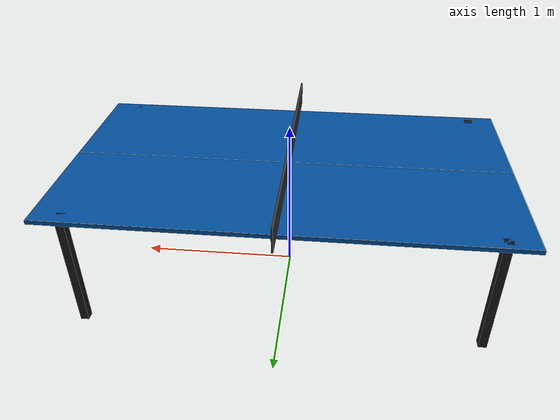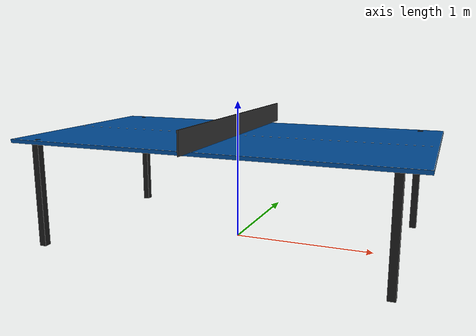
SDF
<?xml version="1.0"?>
<sdf version="1.7">
  <model name="table_tennis_table">
    <static>true</static>

    <!-- Table top -->
    <link name="table_top">
      <pose>0 0 0.7475 0 0 0</pose>

      <collision name="collision">
        <geometry>
          <box>
            <size>2.74 1.525 0.025</size>
          </box>
        </geometry>
        <surface>
          <friction>
            <ode>
              <mu>0.35</mu>
              <mu2>0.35</mu2>
            </ode>
          </friction>
          <bounce>
            <restitution_coefficient>0.75</restitution_coefficient>
            <threshold>0.01</threshold>
          </bounce>
          <contact>
            <ode>
              <kp>1000000.0</kp>
              <kd>100.0</kd>
            </ode>
          </contact>
        </surface>
      </collision>

      <visual name="visual">
        <geometry>
          <box>
            <size>2.74 1.525 0.025</size>
          </box>
        </geometry>
        <material>
          <ambient>0.0 0.3 0.6 1.0</ambient>
          <diffuse>0.0 0.3 0.6 1.0</diffuse>
          <specular>0.2 0.2 0.2 1.0</specular>
        </material>
      </visual>
    </link>

    <!-- White center line -->
    <link name="center_line">
      <pose>0 0 0.76001 0 0 0</pose>
      <visual name="visual">
        <geometry>
          <box>
            <size>2.74 0.003 0.001</size>
          </box>
        </geometry>
        <material>
          <ambient>0.95 0.95 0.95 1.0</ambient>
          <diffuse>0.95 0.95 0.95 1.0</diffuse>
        </material>
      </visual>
    </link>

    <!-- White side lines -->
    <link name="side_line_left">
      <pose>0 0.761 0.76001 0 0 0</pose>
      <visual name="visual">
        <geometry>
          <box>
            <size>2.74 0.003 0.001</size>
          </box>
        </geometry>
        <material>
          <ambient>0.95 0.95 0.95 1.0</ambient>
          <diffuse>0.95 0.95 0.95 1.0</diffuse>
        </material>
      </visual>
    </link>

    <link name="side_line_right">
      <pose>0 -0.761 0.76001 0 0 0</pose>
      <visual name="visual">
        <geometry>
          <box>
            <size>2.74 0.003 0.001</size>
          </box>
        </geometry>
        <material>
          <ambient>0.95 0.95 0.95 1.0</ambient>
          <diffuse>0.95 0.95 0.95 1.0</diffuse>
        </material>
      </visual>
    </link>

    <!-- White end lines -->
    <link name="end_line_left">
      <pose>-1.369 0 0.76001 0 0 0</pose>
      <visual name="visual">
        <geometry>
          <box>
            <size>0.003 1.525 0.001</size>
          </box>
        </geometry>
        <material>
          <ambient>0.95 0.95 0.95 1.0</ambient>
          <diffuse>0.95 0.95 0.95 1.0</diffuse>
        </material>
      </visual>
    </link>

    <link name="end_line_right">
      <pose>1.369 0 0.76001 0 0 0</pose>
      <visual name="visual">
        <geometry>
          <box>
            <size>0.003 1.525 0.001</size>
          </box>
        </geometry>
        <material>
          <ambient>0.95 0.95 0.95 1.0</ambient>
          <diffuse>0.95 0.95 0.95 1.0</diffuse>
        </material>
      </visual>
    </link>

    <!-- Net -->
    <link name="net">
      <pose>0 0 0.83625 0 0 0</pose>

      <collision name="collision">
        <geometry>
          <box>
            <size>0.01 1.83 0.1525</size>
          </box>
        </geometry>
        <surface>
          <friction>
            <ode>
              <mu>0.4</mu>
              <mu2>0.4</mu2>
            </ode>
          </friction>
          <bounce>
            <restitution_coefficient>0.3</restitution_coefficient>
            <threshold>0.01</threshold>
          </bounce>
        </surface>
      </collision>

      <visual name="visual">
        <geometry>
          <box>
            <size>0.01 1.83 0.1525</size>
          </box>
        </geometry>
        <material>
          <ambient>0.2 0.2 0.2 1.0</ambient>
          <diffuse>0.2 0.2 0.2 1.0</diffuse>
          <specular>0.1 0.1 0.1 1.0</specular>
        </material>
      </visual>
    </link>

    <!-- Leg 1 (front left) -->
    <link name="leg1">
      <pose>-1.2 0.7 0.38 0 0 0</pose>
      <collision name="collision">
        <geometry>
          <box>
            <size>0.05 0.05 0.76</size>
          </box>
        </geometry>
      </collision>
      <visual name="visual">
        <geometry>
          <box>
            <size>0.05 0.05 0.76</size>
          </box>
        </geometry>
        <material>
          <ambient>0.1 0.1 0.1 1.0</ambient>
          <diffuse>0.1 0.1 0.1 1.0</diffuse>
        </material>
      </visual>
    </link>

    <!-- Leg 2 (front right) -->
    <link name="leg2">
      <pose>-1.2 -0.7 0.38 0 0 0</pose>
      <collision name="collision">
        <geometry>
          <box>
            <size>0.05 0.05 0.76</size>
          </box>
        </geometry>
      </collision>
      <visual name="visual">
        <geometry>
          <box>
            <size>0.05 0.05 0.76</size>
          </box>
        </geometry>
        <material>
          <ambient>0.1 0.1 0.1 1.0</ambient>
          <diffuse>0.1 0.1 0.1 1.0</diffuse>
        </material>
      </visual>
    </link>

    <!-- Leg 3 (back left) -->
    <link name="leg3">
      <pose>1.2 0.7 0.38 0 0 0</pose>
      <collision name="collision">
        <geometry>
          <box>
            <size>0.05 0.05 0.76</size>
          </box>
        </geometry>
      </collision>
      <visual name="visual">
        <geometry>
          <box>
            <size>0.05 0.05 0.76</size>
          </box>
        </geometry>
        <material>
          <ambient>0.1 0.1 0.1 1.0</ambient>
          <diffuse>0.1 0.1 0.1 1.0</diffuse>
        </material>
      </visual>
    </link>

    <!-- Leg 4 (back right) -->
    <link name="leg4">
      <pose>1.2 -0.7 0.38 0 0 0</pose>
      <collision name="collision">
        <geometry>
          <box>
            <size>0.05 0.05 0.76</size>
          </box>
        </geometry>
      </collision>
      <visual name="visual">
        <geometry>
          <box>
            <size>0.05 0.05 0.76</size>
          </box>
        </geometry>
        <material>
          <ambient>0.1 0.1 0.1 1.0</ambient>
          <diffuse>0.1 0.1 0.1 1.0</diffuse>
        </material>
      </visual>
    </link>

  </model>
</sdf>
